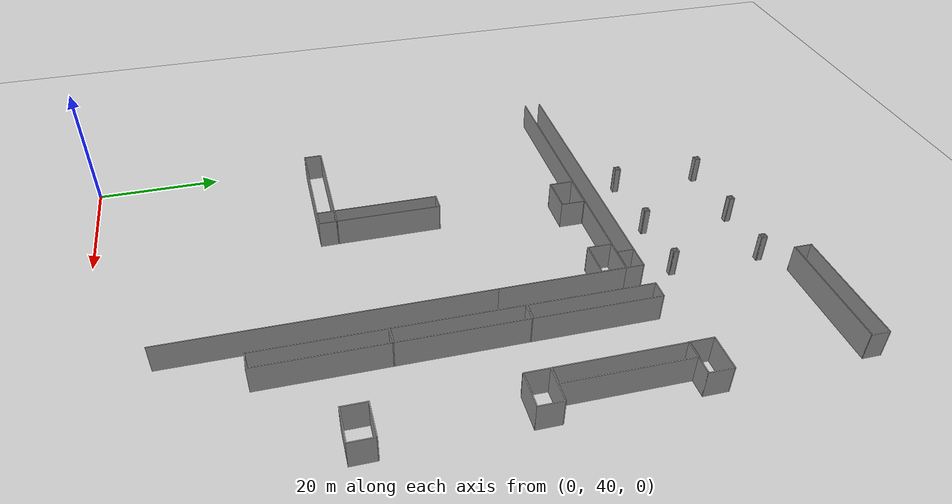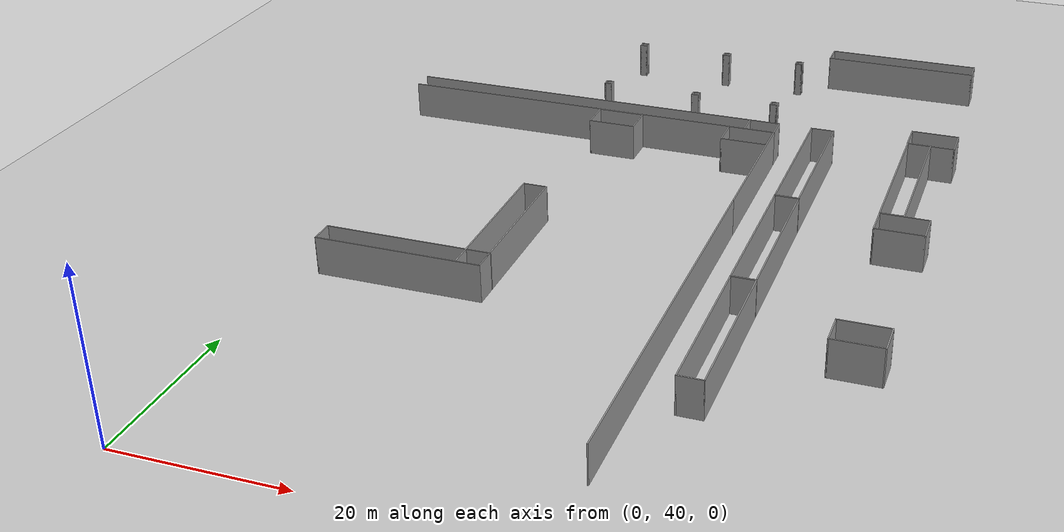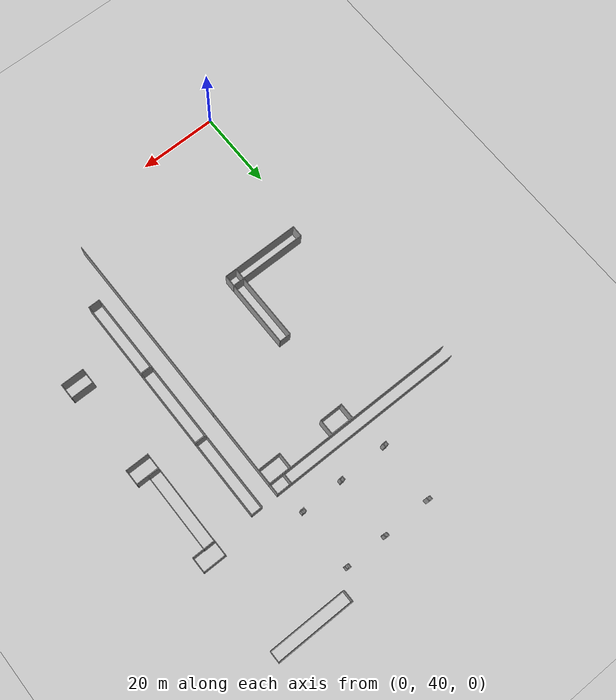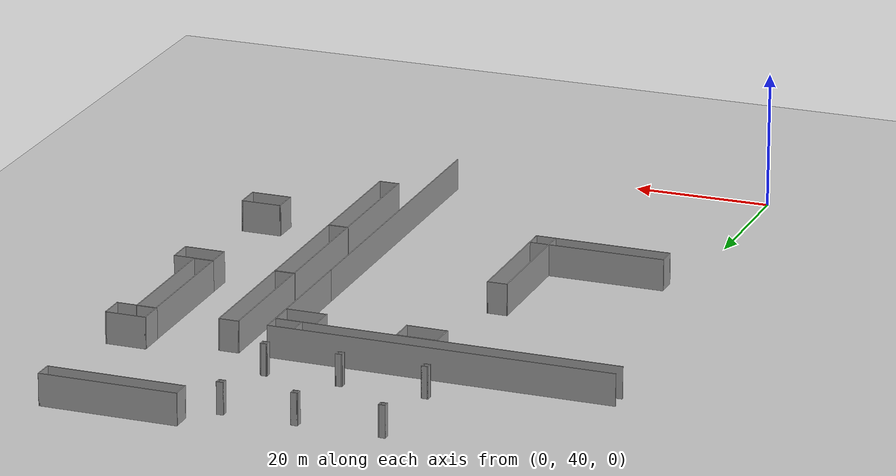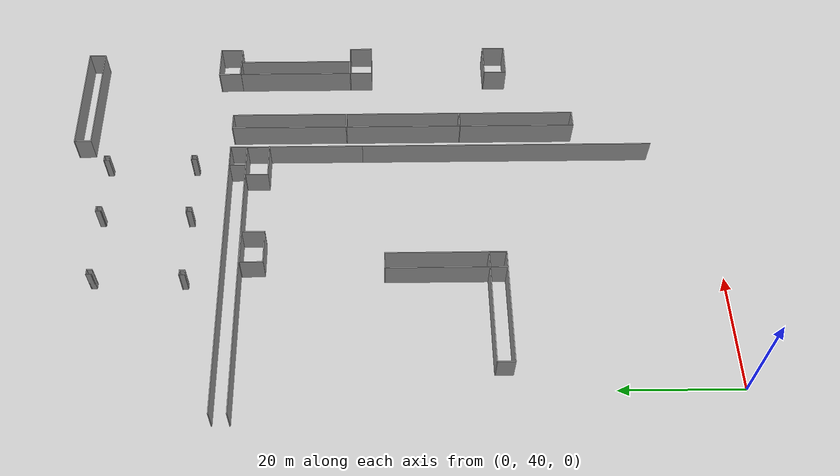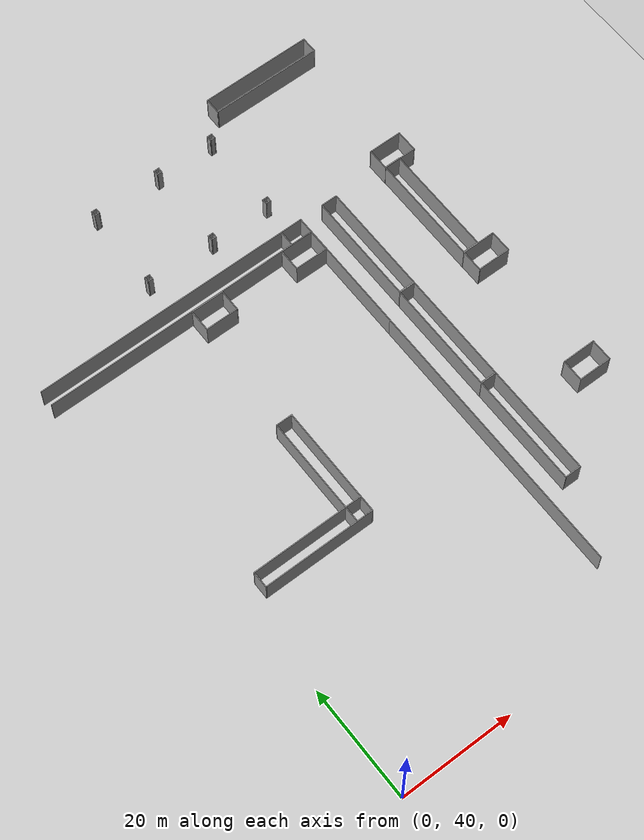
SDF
<sdf version="1.6">
 <world name="default">
  <model name="ground_plane">
   <static>1</static>
   <link name="link">
    <collision name="collision">
     <geometry><plane><normal>0 0 1</normal><size>320 320</size></plane></geometry>
     <surface>
      <contact><collide_bitmask>65535</collide_bitmask></contact>
      <friction><ode><mu>100</mu><mu2>50</mu2></ode></friction>
     </surface>
    </collision>
    <visual name="visual">
     <cast_shadows>0</cast_shadows>
     <geometry><plane><normal>0 0 1</normal><size>320 320</size></plane></geometry>
     <material>
      <script><uri>file://media/materials/scripts/gazebo.material</uri><name>Gazebo/Grey</name></script>
     </material>
    </visual>
   </link>
  </model>
  <model name="box_1mx1m">
   <pose>42.6323 143.384 0 0 -0 0</pose>
   <link name="Wall_10">
    <collision name="Wall_10_Collision">
     <geometry><box><size>1 0.15 6.555</size></box></geometry>
     <pose>0 0 1.25 0 -0 0</pose>
    </collision>
    <visual name="Wall_10_Visual">
     <pose>0 0 1.25 0 -0 0</pose>
     <geometry><box><size>1 0.15 6.555</size></box></geometry>
     <material>
      <script><uri>file://media/materials/scripts/gazebo.material</uri><name>Gazebo/Grey</name></script>
      <ambient>1 1 1 1</ambient>
     </material>
     <meta><layer>0</layer></meta>
    </visual>
    <pose>-0.425 0 0 0 -0 -1.5708</pose>
   </link>
   <link name="Wall_11">
    <collision name="Wall_11_Collision">
     <geometry><box><size>1 0.15 6.555</size></box></geometry>
     <pose>0 0 1.25 0 -0 0</pose>
    </collision>
    <visual name="Wall_11_Visual">
     <pose>0 0 1.25 0 -0 0</pose>
     <geometry><box><size>1 0.15 6.555</size></box></geometry>
     <material>
      <script><uri>file://media/materials/scripts/gazebo.material</uri><name>Gazebo/Grey</name></script>
      <ambient>1 1 1 1</ambient>
     </material>
     <meta><layer>0</layer></meta>
    </visual>
    <pose>0 -0.425 0 0 -0 0</pose>
   </link>
   <link name="Wall_12">
    <collision name="Wall_12_Collision">
     <geometry><box><size>1 0.15 6.555</size></box></geometry>
     <pose>0 0 1.25 0 -0 0</pose>
    </collision>
    <visual name="Wall_12_Visual">
     <pose>0 0 1.25 0 -0 0</pose>
     <geometry><box><size>1 0.15 6.555</size></box></geometry>
     <material>
      <script><uri>file://media/materials/scripts/gazebo.material</uri><name>Gazebo/Grey</name></script>
      <ambient>1 1 1 1</ambient>
     </material>
     <meta><layer>0</layer></meta>
    </visual>
    <pose>0.425 0 0 0 -0 1.5708</pose>
   </link>
   <link name="Wall_13">
    <collision name="Wall_13_Collision">
     <geometry><box><size>1 0.15 6.555</size></box></geometry>
     <pose>0 0 1.25 0 -0 0</pose>
    </collision>
    <visual name="Wall_13_Visual">
     <pose>0 0 1.25 0 -0 0</pose>
     <geometry><box><size>1 0.15 6.555</size></box></geometry>
     <material>
      <script><uri>file://media/materials/scripts/gazebo.material</uri><name>Gazebo/Grey</name></script>
      <ambient>1 1 1 1</ambient>
     </material>
     <meta><layer>0</layer></meta>
    </visual>
    <pose>0 0.425 0 0 -0 3.14159</pose>
   </link>
   <static>1</static>
  </model>
  <model name="box_1mx1m_0">
   <pose>32.0321 143.369 0 0 -0 0</pose>
   <link name="Wall_10">
    <collision name="Wall_10_Collision">
     <geometry><box><size>1 0.15 6.555</size></box></geometry>
     <pose>0 0 1.25 0 -0 0</pose>
    </collision>
    <visual name="Wall_10_Visual">
     <pose>0 0 1.25 0 -0 0</pose>
     <geometry><box><size>1 0.15 6.555</size></box></geometry>
     <material>
      <script><uri>file://media/materials/scripts/gazebo.material</uri><name>Gazebo/Grey</name></script>
      <ambient>1 1 1 1</ambient>
     </material>
     <meta><layer>0</layer></meta>
    </visual>
    <pose>-0.425 0 0 0 -0 -1.5708</pose>
   </link>
   <link name="Wall_11">
    <collision name="Wall_11_Collision">
     <geometry><box><size>1 0.15 6.555</size></box></geometry>
     <pose>0 0 1.25 0 -0 0</pose>
    </collision>
    <visual name="Wall_11_Visual">
     <pose>0 0 1.25 0 -0 0</pose>
     <geometry><box><size>1 0.15 6.555</size></box></geometry>
     <material>
      <script><uri>file://media/materials/scripts/gazebo.material</uri><name>Gazebo/Grey</name></script>
      <ambient>1 1 1 1</ambient>
     </material>
     <meta><layer>0</layer></meta>
    </visual>
    <pose>0 -0.425 0 0 -0 0</pose>
   </link>
   <link name="Wall_12">
    <collision name="Wall_12_Collision">
     <geometry><box><size>1 0.15 6.555</size></box></geometry>
     <pose>0 0 1.25 0 -0 0</pose>
    </collision>
    <visual name="Wall_12_Visual">
     <pose>0 0 1.25 0 -0 0</pose>
     <geometry><box><size>1 0.15 6.555</size></box></geometry>
     <material>
      <script><uri>file://media/materials/scripts/gazebo.material</uri><name>Gazebo/Grey</name></script>
      <ambient>1 1 1 1</ambient>
     </material>
     <meta><layer>0</layer></meta>
    </visual>
    <pose>0.425 0 0 0 -0 1.5708</pose>
   </link>
   <link name="Wall_13">
    <collision name="Wall_13_Collision">
     <geometry><box><size>1 0.15 6.555</size></box></geometry>
     <pose>0 0 1.25 0 -0 0</pose>
    </collision>
    <visual name="Wall_13_Visual">
     <pose>0 0 1.25 0 -0 0</pose>
     <geometry><box><size>1 0.15 6.555</size></box></geometry>
     <material>
      <script><uri>file://media/materials/scripts/gazebo.material</uri><name>Gazebo/Grey</name></script>
      <ambient>1 1 1 1</ambient>
     </material>
     <meta><layer>0</layer></meta>
    </visual>
    <pose>0 0.425 0 0 -0 3.14159</pose>
   </link>
   <static>1</static>
  </model>
  <model name="box_1mx1m_1">
   <pose>19.7075 143.24 0 0 -0 0</pose>
   <link name="Wall_10">
    <collision name="Wall_10_Collision">
     <geometry><box><size>1 0.15 6.555</size></box></geometry>
     <pose>0 0 1.25 0 -0 0</pose>
    </collision>
    <visual name="Wall_10_Visual">
     <pose>0 0 1.25 0 -0 0</pose>
     <geometry><box><size>1 0.15 6.555</size></box></geometry>
     <material>
      <script><uri>file://media/materials/scripts/gazebo.material</uri><name>Gazebo/Grey</name></script>
      <ambient>1 1 1 1</ambient>
     </material>
     <meta><layer>0</layer></meta>
    </visual>
    <pose>-0.425 0 0 0 -0 -1.5708</pose>
   </link>
   <link name="Wall_11">
    <collision name="Wall_11_Collision">
     <geometry><box><size>1 0.15 6.555</size></box></geometry>
     <pose>0 0 1.25 0 -0 0</pose>
    </collision>
    <visual name="Wall_11_Visual">
     <pose>0 0 1.25 0 -0 0</pose>
     <geometry><box><size>1 0.15 6.555</size></box></geometry>
     <material>
      <script><uri>file://media/materials/scripts/gazebo.material</uri><name>Gazebo/Grey</name></script>
      <ambient>1 1 1 1</ambient>
     </material>
     <meta><layer>0</layer></meta>
    </visual>
    <pose>0 -0.425 0 0 -0 0</pose>
   </link>
   <link name="Wall_12">
    <collision name="Wall_12_Collision">
     <geometry><box><size>1 0.15 6.555</size></box></geometry>
     <pose>0 0 1.25 0 -0 0</pose>
    </collision>
    <visual name="Wall_12_Visual">
     <pose>0 0 1.25 0 -0 0</pose>
     <geometry><box><size>1 0.15 6.555</size></box></geometry>
     <material>
      <script><uri>file://media/materials/scripts/gazebo.material</uri><name>Gazebo/Grey</name></script>
      <ambient>1 1 1 1</ambient>
     </material>
     <meta><layer>0</layer></meta>
    </visual>
    <pose>0.425 0 0 0 -0 1.5708</pose>
   </link>
   <link name="Wall_13">
    <collision name="Wall_13_Collision">
     <geometry><box><size>1 0.15 6.555</size></box></geometry>
     <pose>0 0 1.25 0 -0 0</pose>
    </collision>
    <visual name="Wall_13_Visual">
     <pose>0 0 1.25 0 -0 0</pose>
     <geometry><box><size>1 0.15 6.555</size></box></geometry>
     <material>
      <script><uri>file://media/materials/scripts/gazebo.material</uri><name>Gazebo/Grey</name></script>
      <ambient>1 1 1 1</ambient>
     </material>
     <meta><layer>0</layer></meta>
    </visual>
    <pose>0 0.425 0 0 -0 3.14159</pose>
   </link>
   <static>1</static>
  </model>
  <model name="wall_50m_v">
   <pose>44.7565 74.3816 0 0 -0 0</pose>
   <link name="Wall_2">
    <collision name="Wall_2_Collision">
     <geometry><box><size>50 0.15 6.555</size></box></geometry>
     <pose>0 0 1.25 0 -0 0</pose>
    </collision>
    <visual name="Wall_2_Visual">
     <pose>0 0 1.25 0 -0 0</pose>
     <geometry><box><size>50 0.15 6.555</size></box></geometry>
     <material>
      <script><uri>file://media/materials/scripts/gazebo.material</uri><name>Gazebo/Grey</name></script>
      <ambient>1 1 1 1</ambient>
     </material>
     <meta><layer>0</layer></meta>
    </visual>
    <pose>-0 -1e-06 0 0 -0 -1.5708</pose>
   </link>
   <static>1</static>
  </model>
  <model name="wall_v20m_9">
   <pose>44.7593 109.367 0 0 -0 0</pose>
   <link name="Wall_35">
    <collision name="Wall_35_Collision">
     <geometry><box><size>20 0.15 6.555</size></box></geometry>
     <pose>0 0 1.25 0 -0 0</pose>
    </collision>
    <visual name="Wall_35_Visual">
     <pose>0 0 1.25 0 -0 0</pose>
     <geometry><box><size>20 0.15 6.555</size></box></geometry>
     <material>
      <script><uri>file://media/materials/scripts/gazebo.material</uri><name>Gazebo/Grey</name></script>
      <ambient>1 1 1 1</ambient>
     </material>
     <meta><layer>0</layer></meta>
    </visual>
    <pose>0 -0 0 0 -0 -1.5708</pose>
   </link>
   <static>1</static>
  </model>
  <model name="wall_50m">
   <pose>19.7932 119.397 0 0 -0 0</pose>
   <link name="Wall_0">
    <collision name="Wall_0_Collision">
     <geometry><box><size>50 0.15 6.555</size></box></geometry>
     <pose>0 0 1.25 0 -0 0</pose>
    </collision>
    <visual name="Wall_0_Visual">
     <pose>0 0 1.25 0 -0 0</pose>
     <geometry><box><size>50 0.15 6.555</size></box></geometry>
     <material>
      <script><uri>file://media/materials/scripts/gazebo.material</uri><name>Gazebo/Grey</name></script>
      <ambient>1 1 1 1</ambient>
     </material>
     <meta><layer>0</layer></meta>
    </visual>
    <pose>-1e-06 0 0 0 -0 0</pose>
   </link>
   <static>1</static>
  </model>
  <model name="base3x4_1">
   <pose>42.8307 120.768 0 0 -0 0</pose>
   <link name="Wall_18">
    <collision name="Wall_18_Collision">
     <geometry><box><size>3 0.15 6.555</size></box></geometry>
     <pose>0 0 1.25 0 -0 0</pose>
    </collision>
    <visual name="Wall_18_Visual">
     <pose>0 0 1.25 0 -0 0</pose>
     <geometry><box><size>3 0.15 6.555</size></box></geometry>
     <material>
      <script><uri>file://media/materials/scripts/gazebo.material</uri><name>Gazebo/Grey</name></script>
      <ambient>1 1 1 1</ambient>
     </material>
     <meta><layer>0</layer></meta>
    </visual>
    <pose>-1.925 -0 0 0 -0 -1.5708</pose>
   </link>
   <link name="Wall_19">
    <collision name="Wall_19_Collision">
     <geometry><box><size>4 0.15 6.555</size></box></geometry>
     <pose>0 0 1.25 0 -0 0</pose>
    </collision>
    <visual name="Wall_19_Visual">
     <pose>0 0 1.25 0 -0 0</pose>
     <geometry><box><size>4 0.15 6.555</size></box></geometry>
     <material>
      <script><uri>file://media/materials/scripts/gazebo.material</uri><name>Gazebo/Grey</name></script>
      <ambient>1 1 1 1</ambient>
     </material>
     <meta><layer>0</layer></meta>
    </visual>
    <pose>-0 -1.425 0 0 -0 0</pose>
   </link>
   <link name="Wall_20">
    <collision name="Wall_20_Collision">
     <geometry><box><size>3 0.15 6.555</size></box></geometry>
     <pose>0 0 1.25 0 -0 0</pose>
    </collision>
    <visual name="Wall_20_Visual">
     <pose>0 0 1.25 0 -0 0</pose>
     <geometry><box><size>3 0.15 6.555</size></box></geometry>
     <material>
      <script><uri>file://media/materials/scripts/gazebo.material</uri><name>Gazebo/Grey</name></script>
      <ambient>1 1 1 1</ambient>
     </material>
     <meta><layer>0</layer></meta>
    </visual>
    <pose>1.925 -0 0 0 -0 1.5708</pose>
   </link>
   <link name="Wall_21">
    <collision name="Wall_21_Collision">
     <geometry><box><size>4 0.15 6.555</size></box></geometry>
     <pose>0 0 1.25 0 -0 0</pose>
    </collision>
    <visual name="Wall_21_Visual">
     <pose>0 0 1.25 0 -0 0</pose>
     <geometry><box><size>4 0.15 6.555</size></box></geometry>
     <material>
      <script><uri>file://media/materials/scripts/gazebo.material</uri><name>Gazebo/Grey</name></script>
      <ambient>1 1 1 1</ambient>
     </material>
     <meta><layer>0</layer></meta>
    </visual>
    <pose>-0 1.425 0 0 -0 3.14159</pose>
   </link>
   <static>1</static>
  </model>
  <model name="wall_50m_0">
   <pose>19.8121 122.211 0 0 -0 0</pose>
   <link name="Wall_0">
    <collision name="Wall_0_Collision">
     <geometry><box><size>50 0.15 6.555</size></box></geometry>
     <pose>0 0 1.25 0 -0 0</pose>
    </collision>
    <visual name="Wall_0_Visual">
     <pose>0 0 1.25 0 -0 0</pose>
     <geometry><box><size>50 0.15 6.555</size></box></geometry>
     <material>
      <script><uri>file://media/materials/scripts/gazebo.material</uri><name>Gazebo/Grey</name></script>
      <ambient>1 1 1 1</ambient>
     </material>
     <meta><layer>0</layer></meta>
    </visual>
    <pose>-1e-06 0 0 0 -0 0</pose>
   </link>
   <static>1</static>
  </model>
  <model name="box_1mx1m_6">
   <pose>42.6286 128.355 0 0 -0 0</pose>
   <link name="Wall_10">
    <collision name="Wall_10_Collision">
     <geometry><box><size>1 0.15 6.555</size></box></geometry>
     <pose>0 0 1.25 0 -0 0</pose>
    </collision>
    <visual name="Wall_10_Visual">
     <pose>0 0 1.25 0 -0 0</pose>
     <geometry><box><size>1 0.15 6.555</size></box></geometry>
     <material>
      <script><uri>file://media/materials/scripts/gazebo.material</uri><name>Gazebo/Grey</name></script>
      <ambient>1 1 1 1</ambient>
     </material>
     <meta><layer>0</layer></meta>
    </visual>
    <pose>-0.425 0 0 0 -0 -1.5708</pose>
   </link>
   <link name="Wall_11">
    <collision name="Wall_11_Collision">
     <geometry><box><size>1 0.15 6.555</size></box></geometry>
     <pose>0 0 1.25 0 -0 0</pose>
    </collision>
    <visual name="Wall_11_Visual">
     <pose>0 0 1.25 0 -0 0</pose>
     <geometry><box><size>1 0.15 6.555</size></box></geometry>
     <material>
      <script><uri>file://media/materials/scripts/gazebo.material</uri><name>Gazebo/Grey</name></script>
      <ambient>1 1 1 1</ambient>
     </material>
     <meta><layer>0</layer></meta>
    </visual>
    <pose>0 -0.425 0 0 -0 0</pose>
   </link>
   <link name="Wall_12">
    <collision name="Wall_12_Collision">
     <geometry><box><size>1 0.15 6.555</size></box></geometry>
     <pose>0 0 1.25 0 -0 0</pose>
    </collision>
    <visual name="Wall_12_Visual">
     <pose>0 0 1.25 0 -0 0</pose>
     <geometry><box><size>1 0.15 6.555</size></box></geometry>
     <material>
      <script><uri>file://media/materials/scripts/gazebo.material</uri><name>Gazebo/Grey</name></script>
      <ambient>1 1 1 1</ambient>
     </material>
     <meta><layer>0</layer></meta>
    </visual>
    <pose>0.425 0 0 0 -0 1.5708</pose>
   </link>
   <link name="Wall_13">
    <collision name="Wall_13_Collision">
     <geometry><box><size>1 0.15 6.555</size></box></geometry>
     <pose>0 0 1.25 0 -0 0</pose>
    </collision>
    <visual name="Wall_13_Visual">
     <pose>0 0 1.25 0 -0 0</pose>
     <geometry><box><size>1 0.15 6.555</size></box></geometry>
     <material>
      <script><uri>file://media/materials/scripts/gazebo.material</uri><name>Gazebo/Grey</name></script>
      <ambient>1 1 1 1</ambient>
     </material>
     <meta><layer>0</layer></meta>
    </visual>
    <pose>0 0.425 0 0 -0 3.14159</pose>
   </link>
   <static>1</static>
  </model>
  <model name="box_1mx1m_7">
   <pose>31.7769 128.306 0 0 -0 0</pose>
   <link name="Wall_10">
    <collision name="Wall_10_Collision">
     <geometry><box><size>1 0.15 6.555</size></box></geometry>
     <pose>0 0 1.25 0 -0 0</pose>
    </collision>
    <visual name="Wall_10_Visual">
     <pose>0 0 1.25 0 -0 0</pose>
     <geometry><box><size>1 0.15 6.555</size></box></geometry>
     <material>
      <script><uri>file://media/materials/scripts/gazebo.material</uri><name>Gazebo/Grey</name></script>
      <ambient>1 1 1 1</ambient>
     </material>
     <meta><layer>0</layer></meta>
    </visual>
    <pose>-0.425 0 0 0 -0 -1.5708</pose>
   </link>
   <link name="Wall_11">
    <collision name="Wall_11_Collision">
     <geometry><box><size>1 0.15 6.555</size></box></geometry>
     <pose>0 0 1.25 0 -0 0</pose>
    </collision>
    <visual name="Wall_11_Visual">
     <pose>0 0 1.25 0 -0 0</pose>
     <geometry><box><size>1 0.15 6.555</size></box></geometry>
     <material>
      <script><uri>file://media/materials/scripts/gazebo.material</uri><name>Gazebo/Grey</name></script>
      <ambient>1 1 1 1</ambient>
     </material>
     <meta><layer>0</layer></meta>
    </visual>
    <pose>0 -0.425 0 0 -0 0</pose>
   </link>
   <link name="Wall_12">
    <collision name="Wall_12_Collision">
     <geometry><box><size>1 0.15 6.555</size></box></geometry>
     <pose>0 0 1.25 0 -0 0</pose>
    </collision>
    <visual name="Wall_12_Visual">
     <pose>0 0 1.25 0 -0 0</pose>
     <geometry><box><size>1 0.15 6.555</size></box></geometry>
     <material>
      <script><uri>file://media/materials/scripts/gazebo.material</uri><name>Gazebo/Grey</name></script>
      <ambient>1 1 1 1</ambient>
     </material>
     <meta><layer>0</layer></meta>
    </visual>
    <pose>0.425 0 0 0 -0 1.5708</pose>
   </link>
   <link name="Wall_13">
    <collision name="Wall_13_Collision">
     <geometry><box><size>1 0.15 6.555</size></box></geometry>
     <pose>0 0 1.25 0 -0 0</pose>
    </collision>
    <visual name="Wall_13_Visual">
     <pose>0 0 1.25 0 -0 0</pose>
     <geometry><box><size>1 0.15 6.555</size></box></geometry>
     <material>
      <script><uri>file://media/materials/scripts/gazebo.material</uri><name>Gazebo/Grey</name></script>
      <ambient>1 1 1 1</ambient>
     </material>
     <meta><layer>0</layer></meta>
    </visual>
    <pose>0 0.425 0 0 -0 3.14159</pose>
   </link>
   <static>1</static>
  </model>
  <model name="box_1mx1m_8">
   <pose>19.4238 128.303 0 0 -0 0</pose>
   <link name="Wall_10">
    <collision name="Wall_10_Collision">
     <geometry><box><size>1 0.15 6.555</size></box></geometry>
     <pose>0 0 1.25 0 -0 0</pose>
    </collision>
    <visual name="Wall_10_Visual">
     <pose>0 0 1.25 0 -0 0</pose>
     <geometry><box><size>1 0.15 6.555</size></box></geometry>
     <material>
      <script><uri>file://media/materials/scripts/gazebo.material</uri><name>Gazebo/Grey</name></script>
      <ambient>1 1 1 1</ambient>
     </material>
     <meta><layer>0</layer></meta>
    </visual>
    <pose>-0.425 0 0 0 -0 -1.5708</pose>
   </link>
   <link name="Wall_11">
    <collision name="Wall_11_Collision">
     <geometry><box><size>1 0.15 6.555</size></box></geometry>
     <pose>0 0 1.25 0 -0 0</pose>
    </collision>
    <visual name="Wall_11_Visual">
     <pose>0 0 1.25 0 -0 0</pose>
     <geometry><box><size>1 0.15 6.555</size></box></geometry>
     <material>
      <script><uri>file://media/materials/scripts/gazebo.material</uri><name>Gazebo/Grey</name></script>
      <ambient>1 1 1 1</ambient>
     </material>
     <meta><layer>0</layer></meta>
    </visual>
    <pose>0 -0.425 0 0 -0 0</pose>
   </link>
   <link name="Wall_12">
    <collision name="Wall_12_Collision">
     <geometry><box><size>1 0.15 6.555</size></box></geometry>
     <pose>0 0 1.25 0 -0 0</pose>
    </collision>
    <visual name="Wall_12_Visual">
     <pose>0 0 1.25 0 -0 0</pose>
     <geometry><box><size>1 0.15 6.555</size></box></geometry>
     <material>
      <script><uri>file://media/materials/scripts/gazebo.material</uri><name>Gazebo/Grey</name></script>
      <ambient>1 1 1 1</ambient>
     </material>
     <meta><layer>0</layer></meta>
    </visual>
    <pose>0.425 0 0 0 -0 1.5708</pose>
   </link>
   <link name="Wall_13">
    <collision name="Wall_13_Collision">
     <geometry><box><size>1 0.15 6.555</size></box></geometry>
     <pose>0 0 1.25 0 -0 0</pose>
    </collision>
    <visual name="Wall_13_Visual">
     <pose>0 0 1.25 0 -0 0</pose>
     <geometry><box><size>1 0.15 6.555</size></box></geometry>
     <material>
      <script><uri>file://media/materials/scripts/gazebo.material</uri><name>Gazebo/Grey</name></script>
      <ambient>1 1 1 1</ambient>
     </material>
     <meta><layer>0</layer></meta>
    </visual>
    <pose>0 0.425 0 0 -0 3.14159</pose>
   </link>
   <static>1</static>
  </model>
  <model name="base4x6">
   <pose>41.7753 117.414 0 0 -0 0</pose>
   <link name="Wall_23">
    <collision name="Wall_23_Collision">
     <geometry><box><size>4 0.15 6.555</size></box></geometry>
     <pose>0 0 1.25 0 -0 0</pose>
    </collision>
    <visual name="Wall_23_Visual">
     <pose>0 0 1.25 0 -0 0</pose>
     <geometry><box><size>4 0.15 6.555</size></box></geometry>
     <material>
      <script><uri>file://media/materials/scripts/gazebo.material</uri><name>Gazebo/Grey</name></script>
      <ambient>1 1 1 1</ambient>
     </material>
     <meta><layer>0</layer></meta>
    </visual>
    <pose>-2.925 0 0 0 -0 -1.5708</pose>
   </link>
   <link name="Wall_24">
    <collision name="Wall_24_Collision">
     <geometry><box><size>6 0.15 6.555</size></box></geometry>
     <pose>0 0 1.25 0 -0 0</pose>
    </collision>
    <visual name="Wall_24_Visual">
     <pose>0 0 1.25 0 -0 0</pose>
     <geometry><box><size>6 0.15 6.555</size></box></geometry>
     <material>
      <script><uri>file://media/materials/scripts/gazebo.material</uri><name>Gazebo/Grey</name></script>
      <ambient>1 1 1 1</ambient>
     </material>
     <meta><layer>0</layer></meta>
    </visual>
    <pose>-0 -1.925 0 0 -0 0</pose>
   </link>
   <link name="Wall_25">
    <collision name="Wall_25_Collision">
     <geometry><box><size>4 0.15 6.555</size></box></geometry>
     <pose>0 0 1.25 0 -0 0</pose>
    </collision>
    <visual name="Wall_25_Visual">
     <pose>0 0 1.25 0 -0 0</pose>
     <geometry><box><size>4 0.15 6.555</size></box></geometry>
     <material>
      <script><uri>file://media/materials/scripts/gazebo.material</uri><name>Gazebo/Grey</name></script>
      <ambient>1 1 1 1</ambient>
     </material>
     <meta><layer>0</layer></meta>
    </visual>
    <pose>2.925 0 0 0 -0 1.5708</pose>
   </link>
   <link name="Wall_26">
    <collision name="Wall_26_Collision">
     <geometry><box><size>6 0.15 6.555</size></box></geometry>
     <pose>0 0 1.25 0 -0 0</pose>
    </collision>
    <visual name="Wall_26_Visual">
     <pose>0 0 1.25 0 -0 0</pose>
     <geometry><box><size>6 0.15 6.555</size></box></geometry>
     <material>
      <script><uri>file://media/materials/scripts/gazebo.material</uri><name>Gazebo/Grey</name></script>
      <ambient>1 1 1 1</ambient>
     </material>
     <meta><layer>0</layer></meta>
    </visual>
    <pose>-0 1.925 0 0 -0 3.14159</pose>
   </link>
   <static>1</static>
  </model>
  <model name="base4x6_1">
   <pose>24.2164 117.348 0 0 -0 0</pose>
   <link name="Wall_23">
    <collision name="Wall_23_Collision">
     <geometry><box><size>4 0.15 6.555</size></box></geometry>
     <pose>0 0 1.25 0 -0 0</pose>
    </collision>
    <visual name="Wall_23_Visual">
     <pose>0 0 1.25 0 -0 0</pose>
     <geometry><box><size>4 0.15 6.555</size></box></geometry>
     <material>
      <script><uri>file://media/materials/scripts/gazebo.material</uri><name>Gazebo/Grey</name></script>
      <ambient>1 1 1 1</ambient>
     </material>
     <meta><layer>0</layer></meta>
    </visual>
    <pose>-2.925 0 0 0 -0 -1.5708</pose>
   </link>
   <link name="Wall_24">
    <collision name="Wall_24_Collision">
     <geometry><box><size>6 0.15 6.555</size></box></geometry>
     <pose>0 0 1.25 0 -0 0</pose>
    </collision>
    <visual name="Wall_24_Visual">
     <pose>0 0 1.25 0 -0 0</pose>
     <geometry><box><size>6 0.15 6.555</size></box></geometry>
     <material>
      <script><uri>file://media/materials/scripts/gazebo.material</uri><name>Gazebo/Grey</name></script>
      <ambient>1 1 1 1</ambient>
     </material>
     <meta><layer>0</layer></meta>
    </visual>
    <pose>-0 -1.925 0 0 -0 0</pose>
   </link>
   <link name="Wall_25">
    <collision name="Wall_25_Collision">
     <geometry><box><size>4 0.15 6.555</size></box></geometry>
     <pose>0 0 1.25 0 -0 0</pose>
    </collision>
    <visual name="Wall_25_Visual">
     <pose>0 0 1.25 0 -0 0</pose>
     <geometry><box><size>4 0.15 6.555</size></box></geometry>
     <material>
      <script><uri>file://media/materials/scripts/gazebo.material</uri><name>Gazebo/Grey</name></script>
      <ambient>1 1 1 1</ambient>
     </material>
     <meta><layer>0</layer></meta>
    </visual>
    <pose>2.925 0 0 0 -0 1.5708</pose>
   </link>
   <link name="Wall_26">
    <collision name="Wall_26_Collision">
     <geometry><box><size>6 0.15 6.555</size></box></geometry>
     <pose>0 0 1.25 0 -0 0</pose>
    </collision>
    <visual name="Wall_26_Visual">
     <pose>0 0 1.25 0 -0 0</pose>
     <geometry><box><size>6 0.15 6.555</size></box></geometry>
     <material>
      <script><uri>file://media/materials/scripts/gazebo.material</uri><name>Gazebo/Grey</name></script>
      <ambient>1 1 1 1</ambient>
     </material>
     <meta><layer>0</layer></meta>
    </visual>
    <pose>-0 1.925 0 0 -0 3.14159</pose>
   </link>
   <static>1</static>
  </model>
  <model name="base3x20_0">
   <pose>12.8824 77.2886 0 0 -0 0</pose>
   <link name="Wall_16">
    <collision name="Wall_16_Collision">
     <geometry><box><size>3 0.15 6.555</size></box></geometry>
     <pose>0 0 1.25 0 -0 0</pose>
    </collision>
    <visual name="Wall_16_Visual">
     <pose>0 0 1.25 0 -0 0</pose>
     <geometry><box><size>3 0.15 6.555</size></box></geometry>
     <material>
      <script><uri>file://media/materials/scripts/gazebo.material</uri><name>Gazebo/Grey</name></script>
      <ambient>1 1 1 1</ambient>
     </material>
     <meta><layer>0</layer></meta>
    </visual>
    <pose>-9.925 -0 0 0 -0 -1.5708</pose>
   </link>
   <link name="Wall_17">
    <collision name="Wall_17_Collision">
     <geometry><box><size>20 0.15 6.555</size></box></geometry>
     <pose>0 0 1.25 0 -0 0</pose>
    </collision>
    <visual name="Wall_17_Visual">
     <pose>0 0 1.25 0 -0 0</pose>
     <geometry><box><size>20 0.15 6.555</size></box></geometry>
     <material>
      <script><uri>file://media/materials/scripts/gazebo.material</uri><name>Gazebo/Grey</name></script>
      <ambient>1 1 1 1</ambient>
     </material>
     <meta><layer>0</layer></meta>
    </visual>
    <pose>-0 -1.425 0 0 -0 0</pose>
   </link>
   <link name="Wall_18">
    <collision name="Wall_18_Collision">
     <geometry><box><size>3 0.15 6.555</size></box></geometry>
     <pose>0 0 1.25 0 -0 0</pose>
    </collision>
    <visual name="Wall_18_Visual">
     <pose>0 0 1.25 0 -0 0</pose>
     <geometry><box><size>3 0.15 6.555</size></box></geometry>
     <material>
      <script><uri>file://media/materials/scripts/gazebo.material</uri><name>Gazebo/Grey</name></script>
      <ambient>1 1 1 1</ambient>
     </material>
     <meta><layer>0</layer></meta>
    </visual>
    <pose>9.925 -0 0 0 -0 1.5708</pose>
   </link>
   <link name="Wall_19">
    <collision name="Wall_19_Collision">
     <geometry><box><size>20 0.15 6.555</size></box></geometry>
     <pose>0 0 1.25 0 -0 0</pose>
    </collision>
    <visual name="Wall_19_Visual">
     <pose>0 0 1.25 0 -0 0</pose>
     <geometry><box><size>20 0.15 6.555</size></box></geometry>
     <material>
      <script><uri>file://media/materials/scripts/gazebo.material</uri><name>Gazebo/Grey</name></script>
      <ambient>1 1 1 1</ambient>
     </material>
     <meta><layer>0</layer></meta>
    </visual>
    <pose>-0 1.425 0 0 -0 3.14159</pose>
   </link>
   <static>1</static>
  </model>
  <model name="base20x3_1">
   <pose>21.3729 85.7958 0 0 -0 0</pose>
   <link name="Wall_21">
    <collision name="Wall_21_Collision">
     <geometry><box><size>20 0.15 6.555</size></box></geometry>
     <pose>0 0 1.25 0 -0 0</pose>
    </collision>
    <visual name="Wall_21_Visual">
     <pose>0 0 1.25 0 -0 0</pose>
     <geometry><box><size>20 0.15 6.555</size></box></geometry>
     <material>
      <script><uri>file://media/materials/scripts/gazebo.material</uri><name>Gazebo/Grey</name></script>
      <ambient>1 1 1 1</ambient>
     </material>
     <meta><layer>0</layer></meta>
    </visual>
    <pose>-1.425 -0 0 0 -0 -1.5708</pose>
   </link>
   <link name="Wall_22">
    <collision name="Wall_22_Collision">
     <geometry><box><size>3 0.15 6.555</size></box></geometry>
     <pose>0 0 1.25 0 -0 0</pose>
    </collision>
    <visual name="Wall_22_Visual">
     <pose>0 0 1.25 0 -0 0</pose>
     <geometry><box><size>3 0.15 6.555</size></box></geometry>
     <material>
      <script><uri>file://media/materials/scripts/gazebo.material</uri><name>Gazebo/Grey</name></script>
      <ambient>1 1 1 1</ambient>
     </material>
     <meta><layer>0</layer></meta>
    </visual>
    <pose>-0 -9.925 0 0 -0 0</pose>
   </link>
   <link name="Wall_23">
    <collision name="Wall_23_Collision">
     <geometry><box><size>20 0.15 6.555</size></box></geometry>
     <pose>0 0 1.25 0 -0 0</pose>
    </collision>
    <visual name="Wall_23_Visual">
     <pose>0 0 1.25 0 -0 0</pose>
     <geometry><box><size>20 0.15 6.555</size></box></geometry>
     <material>
      <script><uri>file://media/materials/scripts/gazebo.material</uri><name>Gazebo/Grey</name></script>
      <ambient>1 1 1 1</ambient>
     </material>
     <meta><layer>0</layer></meta>
    </visual>
    <pose>1.425 -0 0 0 -0 1.5708</pose>
   </link>
   <link name="Wall_24">
    <collision name="Wall_24_Collision">
     <geometry><box><size>3 0.15 6.555</size></box></geometry>
     <pose>0 0 1.25 0 -0 0</pose>
    </collision>
    <visual name="Wall_24_Visual">
     <pose>0 0 1.25 0 -0 0</pose>
     <geometry><box><size>3 0.15 6.555</size></box></geometry>
     <material>
      <script><uri>file://media/materials/scripts/gazebo.material</uri><name>Gazebo/Grey</name></script>
      <ambient>1 1 1 1</ambient>
     </material>
     <meta><layer>0</layer></meta>
    </visual>
    <pose>-0 9.925 0 0 -0 3.14159</pose>
   </link>
   <static>1</static>
  </model>
  <model name="base4x6_7">
   <pose>64.3938 123.443 0 0 -0 0</pose>
   <link name="Wall_23">
    <collision name="Wall_23_Collision">
     <geometry><box><size>4 0.15 6.555</size></box></geometry>
     <pose>0 0 1.25 0 -0 0</pose>
    </collision>
    <visual name="Wall_23_Visual">
     <pose>0 0 1.25 0 -0 0</pose>
     <geometry><box><size>4 0.15 6.555</size></box></geometry>
     <material>
      <script><uri>file://media/materials/scripts/gazebo.material</uri><name>Gazebo/Grey</name></script>
      <ambient>1 1 1 1</ambient>
     </material>
     <meta><layer>0</layer></meta>
    </visual>
    <pose>-2.925 0 0 0 -0 -1.5708</pose>
   </link>
   <link name="Wall_24">
    <collision name="Wall_24_Collision">
     <geometry><box><size>6 0.15 6.555</size></box></geometry>
     <pose>0 0 1.25 0 -0 0</pose>
    </collision>
    <visual name="Wall_24_Visual">
     <pose>0 0 1.25 0 -0 0</pose>
     <geometry><box><size>6 0.15 6.555</size></box></geometry>
     <material>
      <script><uri>file://media/materials/scripts/gazebo.material</uri><name>Gazebo/Grey</name></script>
      <ambient>1 1 1 1</ambient>
     </material>
     <meta><layer>0</layer></meta>
    </visual>
    <pose>-0 -1.925 0 0 -0 0</pose>
   </link>
   <link name="Wall_25">
    <collision name="Wall_25_Collision">
     <geometry><box><size>4 0.15 6.555</size></box></geometry>
     <pose>0 0 1.25 0 -0 0</pose>
    </collision>
    <visual name="Wall_25_Visual">
     <pose>0 0 1.25 0 -0 0</pose>
     <geometry><box><size>4 0.15 6.555</size></box></geometry>
     <material>
      <script><uri>file://media/materials/scripts/gazebo.material</uri><name>Gazebo/Grey</name></script>
      <ambient>1 1 1 1</ambient>
     </material>
     <meta><layer>0</layer></meta>
    </visual>
    <pose>2.925 0 0 0 -0 1.5708</pose>
   </link>
   <link name="Wall_26">
    <collision name="Wall_26_Collision">
     <geometry><box><size>6 0.15 6.555</size></box></geometry>
     <pose>0 0 1.25 0 -0 0</pose>
    </collision>
    <visual name="Wall_26_Visual">
     <pose>0 0 1.25 0 -0 0</pose>
     <geometry><box><size>6 0.15 6.555</size></box></geometry>
     <material>
      <script><uri>file://media/materials/scripts/gazebo.material</uri><name>Gazebo/Grey</name></script>
      <ambient>1 1 1 1</ambient>
     </material>
     <meta><layer>0</layer></meta>
    </visual>
    <pose>-0 1.925 0 0 -0 3.14159</pose>
   </link>
   <static>1</static>
  </model>
  <model name="base4x6_7_clone">
   <pose>64.4504 99.7084 0 0 -0 0</pose>
   <link name="Wall_23">
    <collision name="Wall_23_Collision">
     <geometry><box><size>4 0.15 6.555</size></box></geometry>
     <pose>0 0 1.25 0 -0 0</pose>
    </collision>
    <visual name="Wall_23_Visual">
     <pose>0 0 1.25 0 -0 0</pose>
     <geometry><box><size>4 0.15 6.555</size></box></geometry>
     <material>
      <script><uri>file://media/materials/scripts/gazebo.material</uri><name>Gazebo/Grey</name></script>
      <ambient>1 1 1 1</ambient>
     </material>
     <meta><layer>0</layer></meta>
    </visual>
    <pose>-2.925 0 0 0 -0 -1.5708</pose>
   </link>
   <link name="Wall_24">
    <collision name="Wall_24_Collision">
     <geometry><box><size>6 0.15 6.555</size></box></geometry>
     <pose>0 0 1.25 0 -0 0</pose>
    </collision>
    <visual name="Wall_24_Visual">
     <pose>0 0 1.25 0 -0 0</pose>
     <geometry><box><size>6 0.15 6.555</size></box></geometry>
     <material>
      <script><uri>file://media/materials/scripts/gazebo.material</uri><name>Gazebo/Grey</name></script>
      <ambient>1 1 1 1</ambient>
     </material>
     <meta><layer>0</layer></meta>
    </visual>
    <pose>-0 -1.925 0 0 -0 0</pose>
   </link>
   <link name="Wall_25">
    <collision name="Wall_25_Collision">
     <geometry><box><size>4 0.15 6.555</size></box></geometry>
     <pose>0 0 1.25 0 -0 0</pose>
    </collision>
    <visual name="Wall_25_Visual">
     <pose>0 0 1.25 0 -0 0</pose>
     <geometry><box><size>4 0.15 6.555</size></box></geometry>
     <material>
      <script><uri>file://media/materials/scripts/gazebo.material</uri><name>Gazebo/Grey</name></script>
      <ambient>1 1 1 1</ambient>
     </material>
     <meta><layer>0</layer></meta>
    </visual>
    <pose>2.925 0 0 0 -0 1.5708</pose>
   </link>
   <link name="Wall_26">
    <collision name="Wall_26_Collision">
     <geometry><box><size>6 0.15 6.555</size></box></geometry>
     <pose>0 0 1.25 0 -0 0</pose>
    </collision>
    <visual name="Wall_26_Visual">
     <pose>0 0 1.25 0 -0 0</pose>
     <geometry><box><size>6 0.15 6.555</size></box></geometry>
     <material>
      <script><uri>file://media/materials/scripts/gazebo.material</uri><name>Gazebo/Grey</name></script>
      <ambient>1 1 1 1</ambient>
     </material>
     <meta><layer>0</layer></meta>
    </visual>
    <pose>-0 1.925 0 0 -0 3.14159</pose>
   </link>
   <static>1</static>
  </model>
  <model name="base4x6_7_clone_0">
   <pose>64.3938 75.3425 0 0 -0 0</pose>
   <link name="Wall_23">
    <collision name="Wall_23_Collision">
     <geometry><box><size>4 0.15 6.555</size></box></geometry>
     <pose>0 0 1.25 0 -0 0</pose>
    </collision>
    <visual name="Wall_23_Visual">
     <pose>0 0 1.25 0 -0 0</pose>
     <geometry><box><size>4 0.15 6.555</size></box></geometry>
     <material>
      <script><uri>file://media/materials/scripts/gazebo.material</uri><name>Gazebo/Grey</name></script>
      <ambient>1 1 1 1</ambient>
     </material>
     <meta><layer>0</layer></meta>
    </visual>
    <pose>-2.925 0 0 0 -0 -1.5708</pose>
   </link>
   <link name="Wall_24">
    <collision name="Wall_24_Collision">
     <geometry><box><size>6 0.15 6.555</size></box></geometry>
     <pose>0 0 1.25 0 -0 0</pose>
    </collision>
    <visual name="Wall_24_Visual">
     <pose>0 0 1.25 0 -0 0</pose>
     <geometry><box><size>6 0.15 6.555</size></box></geometry>
     <material>
      <script><uri>file://media/materials/scripts/gazebo.material</uri><name>Gazebo/Grey</name></script>
      <ambient>1 1 1 1</ambient>
     </material>
     <meta><layer>0</layer></meta>
    </visual>
    <pose>-0 -1.925 0 0 -0 0</pose>
   </link>
   <link name="Wall_25">
    <collision name="Wall_25_Collision">
     <geometry><box><size>4 0.15 6.555</size></box></geometry>
     <pose>0 0 1.25 0 -0 0</pose>
    </collision>
    <visual name="Wall_25_Visual">
     <pose>0 0 1.25 0 -0 0</pose>
     <geometry><box><size>4 0.15 6.555</size></box></geometry>
     <material>
      <script><uri>file://media/materials/scripts/gazebo.material</uri><name>Gazebo/Grey</name></script>
      <ambient>1 1 1 1</ambient>
     </material>
     <meta><layer>0</layer></meta>
    </visual>
    <pose>2.925 0 0 0 -0 1.5708</pose>
   </link>
   <link name="Wall_26">
    <collision name="Wall_26_Collision">
     <geometry><box><size>6 0.15 6.555</size></box></geometry>
     <pose>0 0 1.25 0 -0 0</pose>
    </collision>
    <visual name="Wall_26_Visual">
     <pose>0 0 1.25 0 -0 0</pose>
     <geometry><box><size>6 0.15 6.555</size></box></geometry>
     <material>
      <script><uri>file://media/materials/scripts/gazebo.material</uri><name>Gazebo/Grey</name></script>
      <ambient>1 1 1 1</ambient>
     </material>
     <meta><layer>0</layer></meta>
    </visual>
    <pose>-0 1.925 0 0 -0 3.14159</pose>
   </link>
   <static>1</static>
  </model>
  <model name="base20x3_3">
   <pose>62.9361 111.688 0 0 -0 0</pose>
   <link name="Wall_21">
    <collision name="Wall_21_Collision">
     <geometry><box><size>20 0.15 6.555</size></box></geometry>
     <pose>0 0 1.25 0 -0 0</pose>
    </collision>
    <visual name="Wall_21_Visual">
     <pose>0 0 1.25 0 -0 0</pose>
     <geometry><box><size>20 0.15 6.555</size></box></geometry>
     <material>
      <script><uri>file://media/materials/scripts/gazebo.material</uri><name>Gazebo/Grey</name></script>
      <ambient>1 1 1 1</ambient>
     </material>
     <meta><layer>0</layer></meta>
    </visual>
    <pose>-1.425 -0 0 0 -0 -1.5708</pose>
   </link>
   <link name="Wall_22">
    <collision name="Wall_22_Collision">
     <geometry><box><size>3 0.15 6.555</size></box></geometry>
     <pose>0 0 1.25 0 -0 0</pose>
    </collision>
    <visual name="Wall_22_Visual">
     <pose>0 0 1.25 0 -0 0</pose>
     <geometry><box><size>3 0.15 6.555</size></box></geometry>
     <material>
      <script><uri>file://media/materials/scripts/gazebo.material</uri><name>Gazebo/Grey</name></script>
      <ambient>1 1 1 1</ambient>
     </material>
     <meta><layer>0</layer></meta>
    </visual>
    <pose>-0 -9.925 0 0 -0 0</pose>
   </link>
   <link name="Wall_23">
    <collision name="Wall_23_Collision">
     <geometry><box><size>20 0.15 6.555</size></box></geometry>
     <pose>0 0 1.25 0 -0 0</pose>
    </collision>
    <visual name="Wall_23_Visual">
     <pose>0 0 1.25 0 -0 0</pose>
     <geometry><box><size>20 0.15 6.555</size></box></geometry>
     <material>
      <script><uri>file://media/materials/scripts/gazebo.material</uri><name>Gazebo/Grey</name></script>
      <ambient>1 1 1 1</ambient>
     </material>
     <meta><layer>0</layer></meta>
    </visual>
    <pose>1.425 -0 0 0 -0 1.5708</pose>
   </link>
   <link name="Wall_24">
    <collision name="Wall_24_Collision">
     <geometry><box><size>3 0.15 6.555</size></box></geometry>
     <pose>0 0 1.25 0 -0 0</pose>
    </collision>
    <visual name="Wall_24_Visual">
     <pose>0 0 1.25 0 -0 0</pose>
     <geometry><box><size>3 0.15 6.555</size></box></geometry>
     <material>
      <script><uri>file://media/materials/scripts/gazebo.material</uri><name>Gazebo/Grey</name></script>
      <ambient>1 1 1 1</ambient>
     </material>
     <meta><layer>0</layer></meta>
    </visual>
    <pose>-0 9.925 0 0 -0 3.14159</pose>
   </link>
   <static>1</static>
  </model>
  <model name="base3x20_1_clone_0">
   <pose>56.3388 148.068 0 0 -0 0</pose>
   <link name="Wall_16">
    <collision name="Wall_16_Collision">
     <geometry><box><size>3 0.15 6.555</size></box></geometry>
     <pose>0 0 1.25 0 -0 0</pose>
    </collision>
    <visual name="Wall_16_Visual">
     <pose>0 0 1.25 0 -0 0</pose>
     <geometry><box><size>3 0.15 6.555</size></box></geometry>
     <material>
      <script><uri>file://media/materials/scripts/gazebo.material</uri><name>Gazebo/Grey</name></script>
      <ambient>1 1 1 1</ambient>
     </material>
     <meta><layer>0</layer></meta>
    </visual>
    <pose>-9.925 -0 0 0 -0 -1.5708</pose>
   </link>
   <link name="Wall_17">
    <collision name="Wall_17_Collision">
     <geometry><box><size>20 0.15 6.555</size></box></geometry>
     <pose>0 0 1.25 0 -0 0</pose>
    </collision>
    <visual name="Wall_17_Visual">
     <pose>0 0 1.25 0 -0 0</pose>
     <geometry><box><size>20 0.15 6.555</size></box></geometry>
     <material>
      <script><uri>file://media/materials/scripts/gazebo.material</uri><name>Gazebo/Grey</name></script>
      <ambient>1 1 1 1</ambient>
     </material>
     <meta><layer>0</layer></meta>
    </visual>
    <pose>-0 -1.425 0 0 -0 0</pose>
   </link>
   <link name="Wall_18">
    <collision name="Wall_18_Collision">
     <geometry><box><size>3 0.15 6.555</size></box></geometry>
     <pose>0 0 1.25 0 -0 0</pose>
    </collision>
    <visual name="Wall_18_Visual">
     <pose>0 0 1.25 0 -0 0</pose>
     <geometry><box><size>3 0.15 6.555</size></box></geometry>
     <material>
      <script><uri>file://media/materials/scripts/gazebo.material</uri><name>Gazebo/Grey</name></script>
      <ambient>1 1 1 1</ambient>
     </material>
     <meta><layer>0</layer></meta>
    </visual>
    <pose>9.925 -0 0 0 -0 1.5708</pose>
   </link>
   <link name="Wall_19">
    <collision name="Wall_19_Collision">
     <geometry><box><size>20 0.15 6.555</size></box></geometry>
     <pose>0 0 1.25 0 -0 0</pose>
    </collision>
    <visual name="Wall_19_Visual">
     <pose>0 0 1.25 0 -0 0</pose>
     <geometry><box><size>20 0.15 6.555</size></box></geometry>
     <material>
      <script><uri>file://media/materials/scripts/gazebo.material</uri><name>Gazebo/Grey</name></script>
      <ambient>1 1 1 1</ambient>
     </material>
     <meta><layer>0</layer></meta>
    </visual>
    <pose>-0 1.425 0 0 -0 3.14159</pose>
   </link>
   <static>1</static>
  </model>
  <model name="base20x3_4">
   <pose>50.4764 112.28 0 0 -0 0</pose>
   <link name="Wall_21">
    <collision name="Wall_21_Collision">
     <geometry><box><size>20 0.15 6.555</size></box></geometry>
     <pose>0 0 1.25 0 -0 0</pose>
    </collision>
    <visual name="Wall_21_Visual">
     <pose>0 0 1.25 0 -0 0</pose>
     <geometry><box><size>20 0.15 6.555</size></box></geometry>
     <material>
      <script><uri>file://media/materials/scripts/gazebo.material</uri><name>Gazebo/Grey</name></script>
      <ambient>1 1 1 1</ambient>
     </material>
     <meta><layer>0</layer></meta>
    </visual>
    <pose>-1.425 -0 0 0 -0 -1.5708</pose>
   </link>
   <link name="Wall_22">
    <collision name="Wall_22_Collision">
     <geometry><box><size>3 0.15 6.555</size></box></geometry>
     <pose>0 0 1.25 0 -0 0</pose>
    </collision>
    <visual name="Wall_22_Visual">
     <pose>0 0 1.25 0 -0 0</pose>
     <geometry><box><size>3 0.15 6.555</size></box></geometry>
     <material>
      <script><uri>file://media/materials/scripts/gazebo.material</uri><name>Gazebo/Grey</name></script>
      <ambient>1 1 1 1</ambient>
     </material>
     <meta><layer>0</layer></meta>
    </visual>
    <pose>-0 -9.925 0 0 -0 0</pose>
   </link>
   <link name="Wall_23">
    <collision name="Wall_23_Collision">
     <geometry><box><size>20 0.15 6.555</size></box></geometry>
     <pose>0 0 1.25 0 -0 0</pose>
    </collision>
    <visual name="Wall_23_Visual">
     <pose>0 0 1.25 0 -0 0</pose>
     <geometry><box><size>20 0.15 6.555</size></box></geometry>
     <material>
      <script><uri>file://media/materials/scripts/gazebo.material</uri><name>Gazebo/Grey</name></script>
      <ambient>1 1 1 1</ambient>
     </material>
     <meta><layer>0</layer></meta>
    </visual>
    <pose>1.425 -0 0 0 -0 1.5708</pose>
   </link>
   <link name="Wall_24">
    <collision name="Wall_24_Collision">
     <geometry><box><size>3 0.15 6.555</size></box></geometry>
     <pose>0 0 1.25 0 -0 0</pose>
    </collision>
    <visual name="Wall_24_Visual">
     <pose>0 0 1.25 0 -0 0</pose>
     <geometry><box><size>3 0.15 6.555</size></box></geometry>
     <material>
      <script><uri>file://media/materials/scripts/gazebo.material</uri><name>Gazebo/Grey</name></script>
      <ambient>1 1 1 1</ambient>
     </material>
     <meta><layer>0</layer></meta>
    </visual>
    <pose>-0 9.925 0 0 -0 3.14159</pose>
   </link>
   <static>1</static>
  </model>
  <model name="base20x3_4_clone">
   <pose>50.4681 92.2752 0 0 -0 0</pose>
   <link name="Wall_21">
    <collision name="Wall_21_Collision">
     <geometry><box><size>20 0.15 6.555</size></box></geometry>
     <pose>0 0 1.25 0 -0 0</pose>
    </collision>
    <visual name="Wall_21_Visual">
     <pose>0 0 1.25 0 -0 0</pose>
     <geometry><box><size>20 0.15 6.555</size></box></geometry>
     <material>
      <script><uri>file://media/materials/scripts/gazebo.material</uri><name>Gazebo/Grey</name></script>
      <ambient>1 1 1 1</ambient>
     </material>
     <meta><layer>0</layer></meta>
    </visual>
    <pose>-1.425 -0 0 0 -0 -1.5708</pose>
   </link>
   <link name="Wall_22">
    <collision name="Wall_22_Collision">
     <geometry><box><size>3 0.15 6.555</size></box></geometry>
     <pose>0 0 1.25 0 -0 0</pose>
    </collision>
    <visual name="Wall_22_Visual">
     <pose>0 0 1.25 0 -0 0</pose>
     <geometry><box><size>3 0.15 6.555</size></box></geometry>
     <material>
      <script><uri>file://media/materials/scripts/gazebo.material</uri><name>Gazebo/Grey</name></script>
      <ambient>1 1 1 1</ambient>
     </material>
     <meta><layer>0</layer></meta>
    </visual>
    <pose>-0 -9.925 0 0 -0 0</pose>
   </link>
   <link name="Wall_23">
    <collision name="Wall_23_Collision">
     <geometry><box><size>20 0.15 6.555</size></box></geometry>
     <pose>0 0 1.25 0 -0 0</pose>
    </collision>
    <visual name="Wall_23_Visual">
     <pose>0 0 1.25 0 -0 0</pose>
     <geometry><box><size>20 0.15 6.555</size></box></geometry>
     <material>
      <script><uri>file://media/materials/scripts/gazebo.material</uri><name>Gazebo/Grey</name></script>
      <ambient>1 1 1 1</ambient>
     </material>
     <meta><layer>0</layer></meta>
    </visual>
    <pose>1.425 -0 0 0 -0 1.5708</pose>
   </link>
   <link name="Wall_24">
    <collision name="Wall_24_Collision">
     <geometry><box><size>3 0.15 6.555</size></box></geometry>
     <pose>0 0 1.25 0 -0 0</pose>
    </collision>
    <visual name="Wall_24_Visual">
     <pose>0 0 1.25 0 -0 0</pose>
     <geometry><box><size>3 0.15 6.555</size></box></geometry>
     <material>
      <script><uri>file://media/materials/scripts/gazebo.material</uri><name>Gazebo/Grey</name></script>
      <ambient>1 1 1 1</ambient>
     </material>
     <meta><layer>0</layer></meta>
    </visual>
    <pose>-0 9.925 0 0 -0 3.14159</pose>
   </link>
   <static>1</static>
  </model>
  <model name="base20x3_4_clone_0">
   <pose>50.4692 72.3158 0 0 -0 0</pose>
   <link name="Wall_21">
    <collision name="Wall_21_Collision">
     <geometry><box><size>20 0.15 6.555</size></box></geometry>
     <pose>0 0 1.25 0 -0 0</pose>
    </collision>
    <visual name="Wall_21_Visual">
     <pose>0 0 1.25 0 -0 0</pose>
     <geometry><box><size>20 0.15 6.555</size></box></geometry>
     <material>
      <script><uri>file://media/materials/scripts/gazebo.material</uri><name>Gazebo/Grey</name></script>
      <ambient>1 1 1 1</ambient>
     </material>
     <meta><layer>0</layer></meta>
    </visual>
    <pose>-1.425 -0 0 0 -0 -1.5708</pose>
   </link>
   <link name="Wall_22">
    <collision name="Wall_22_Collision">
     <geometry><box><size>3 0.15 6.555</size></box></geometry>
     <pose>0 0 1.25 0 -0 0</pose>
    </collision>
    <visual name="Wall_22_Visual">
     <pose>0 0 1.25 0 -0 0</pose>
     <geometry><box><size>3 0.15 6.555</size></box></geometry>
     <material>
      <script><uri>file://media/materials/scripts/gazebo.material</uri><name>Gazebo/Grey</name></script>
      <ambient>1 1 1 1</ambient>
     </material>
     <meta><layer>0</layer></meta>
    </visual>
    <pose>-0 -9.925 0 0 -0 0</pose>
   </link>
   <link name="Wall_23">
    <collision name="Wall_23_Collision">
     <geometry><box><size>20 0.15 6.555</size></box></geometry>
     <pose>0 0 1.25 0 -0 0</pose>
    </collision>
    <visual name="Wall_23_Visual">
     <pose>0 0 1.25 0 -0 0</pose>
     <geometry><box><size>20 0.15 6.555</size></box></geometry>
     <material>
      <script><uri>file://media/materials/scripts/gazebo.material</uri><name>Gazebo/Grey</name></script>
      <ambient>1 1 1 1</ambient>
     </material>
     <meta><layer>0</layer></meta>
    </visual>
    <pose>1.425 -0 0 0 -0 1.5708</pose>
   </link>
   <link name="Wall_24">
    <collision name="Wall_24_Collision">
     <geometry><box><size>3 0.15 6.555</size></box></geometry>
     <pose>0 0 1.25 0 -0 0</pose>
    </collision>
    <visual name="Wall_24_Visual">
     <pose>0 0 1.25 0 -0 0</pose>
     <geometry><box><size>3 0.15 6.555</size></box></geometry>
     <material>
      <script><uri>file://media/materials/scripts/gazebo.material</uri><name>Gazebo/Grey</name></script>
      <ambient>1 1 1 1</ambient>
     </material>
     <meta><layer>0</layer></meta>
    </visual>
    <pose>-0 9.925 0 0 -0 3.14159</pose>
   </link>
   <static>1</static>
  </model>
 </world>
</sdf>
